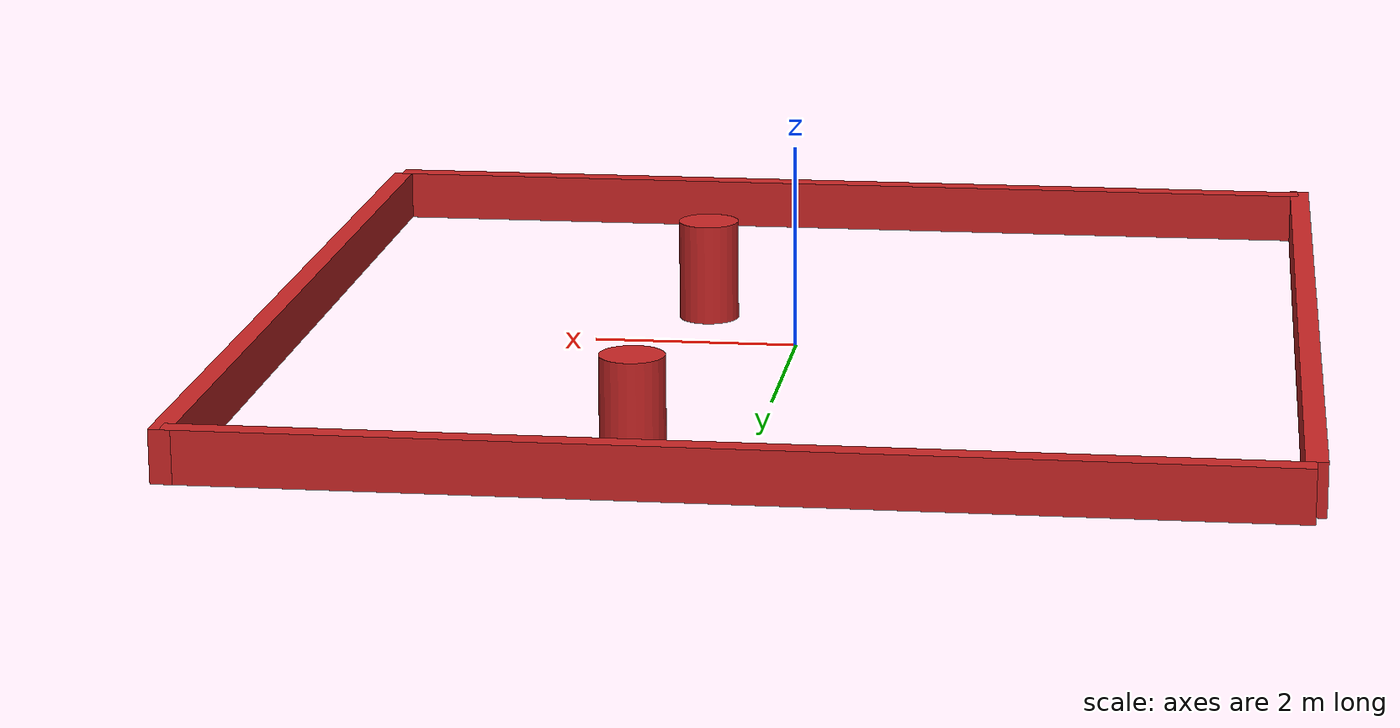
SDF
<?xml version='1.0'?>
<sdf version='1.4'>
  <model name='square_arena'>
    <link name='Wall_0'>
      <collision name='Wall_0_Collision'>
        <geometry>
          <box>
            <size>10.0 0.2 0.5</size>
          </box>
        </geometry>
        <pose>0 0 0.25 0 -0 0</pose>
      </collision>
      <visual name='Wall_0_Visual'>
        <pose>0 0 0.25 0 -0 0</pose>
        <geometry>
          <box>
            <size>10.0 0.2 0.5</size>
          </box>
        </geometry>
        <material>
          <script>
            <uri>file://media/materials/scripts/gazebo.material</uri>
            <name>Gazebo/Red</name>
          </script>
        </material>
      </visual>
      <velocity_decay>
        <linear>0</linear>
        <angular>0</angular>
      </velocity_decay>
      <pose>0 5 0 0 -0 3.14159</pose>
    </link>
    <link name='Wall_2'>
      <collision name='Wall_2_Collision'>
        <geometry>
          <box>
            <size>10 0.2 0.5</size>
          </box>
        </geometry>
        <pose>0 0 0.25 0 -0 0</pose>
      </collision>
      <visual name='Wall_2_Visual'>
        <pose>0 0 0.25 0 -0 0</pose>
        <geometry>
          <box>
            <size>10 0.2 0.5</size>
          </box>
        </geometry>
        <material>
          <script>
            <uri>file://media/materials/scripts/gazebo.material</uri>
            <name>Gazebo/Red</name>
          </script>
        </material>
      </visual>
      <velocity_decay>
        <linear>0</linear>
        <angular>0</angular>
      </velocity_decay>
      <pose>-5 -0.1 0 0 -0 1.5708</pose>
    </link>
    <link name='Wall_4'>
      <collision name='Wall_4_Collision'>
        <geometry>
          <box>
            <size>10 0.2 0.5</size>
          </box>
        </geometry>
        <pose>0 0 0.25 0 -0 0</pose>
      </collision>
      <visual name='Wall_4_Visual'>
        <pose>0 0 0.25 0 -0 0</pose>
        <geometry>
          <box>
            <size>10 0.2 0.5</size>
          </box>
        </geometry>
        <material>
          <script>
            <uri>file://media/materials/scripts/gazebo.material</uri>
            <name>Gazebo/Red</name>
          </script>
        </material>
      </visual>
      <velocity_decay>
        <linear>0</linear>
        <angular>0</angular>
      </velocity_decay>
      <pose>5 0.1 0 0 0 -1.5708</pose>
    </link>
    <link name='Wall_7'>
      <collision name='Wall_7_Collision'>
        <geometry>
          <box>
            <size>10.0 0.2 0.5</size>
          </box>
        </geometry>
        <pose>0 0 0.25 0 -0 0</pose>
      </collision>
      <visual name='Wall_7_Visual'>
        <pose>0 0 0.25 0 -0 0</pose>
        <geometry>
          <box>
            <size>10.0 0.2 0.5</size>
          </box>
        </geometry>
        <material>
          <script>
            <uri>file://media/materials/scripts/gazebo.material</uri>
            <name>Gazebo/Red</name>
          </script>
        </material>
      </visual>
      <velocity_decay>
        <linear>0</linear>
        <angular>0</angular>
      </velocity_decay>
      <pose>0.013664 -4.96178 0 0 -0 0</pose>
    </link>
    <static>1</static>
  </model>
    <!-- Two columns in the world -->
        <model name='unit_cylinder_1'>
      <pose>1 -1 0.5 0 -0 0</pose>
      <link name='link'>
        <inertial>
          <mass>1</mass>
          <inertia>
            <ixx>1</ixx>
            <ixy>0</ixy>
            <ixz>0</ixz>
            <iyy>1</iyy>
            <iyz>0</iyz>
            <izz>1</izz>
          </inertia>
        </inertial>
        <collision name='collision'>
          <geometry>
            <cylinder>
              <radius>0.3</radius>
              <length>1</length>
            </cylinder>
          </geometry>
          <max_contacts>10</max_contacts>
          <surface>
            <bounce/>
            <friction>
              <ode/>
            </friction>
            <contact>
              <ode/>
            </contact>
          </surface>
        </collision>
        <visual name='visual'>
          <geometry>
            <cylinder>
              <radius>0.3</radius>
              <length>1</length>
            </cylinder>
          </geometry>
          <material>
            <script>
              <uri>file://media/materials/scripts/gazebo.material</uri>
              <name>Gazebo/Red</name>
            </script>
          </material>
        </visual>
        <velocity_decay>
          <linear>0</linear>
          <angular>0</angular>
        </velocity_decay>
        <self_collide>0</self_collide>
        <kinematic>0</kinematic>
        <gravity>1</gravity>
      </link>
      <static>1</static>
    </model>
    <model name='unit_cylinder_2'>
      <pose>1 4 0.5 0 -0 0</pose>
      <link name='link'>
        <inertial>
          <mass>1</mass>
          <inertia>
            <ixx>1</ixx>
            <ixy>0</ixy>
            <ixz>0</ixz>
            <iyy>1</iyy>
            <iyz>0</iyz>
            <izz>1</izz>
          </inertia>
        </inertial>
        <collision name='collision'>
          <geometry>
            <cylinder>
              <radius>0.3</radius>
              <length>1</length>
            </cylinder>
          </geometry>
          <max_contacts>10</max_contacts>
          <surface>
            <bounce/>
            <friction>
              <ode/>
            </friction>
            <contact>
              <ode/>
            </contact>
          </surface>
        </collision>
        <visual name='visual'>
          <geometry>
            <cylinder>
              <radius>0.3</radius>
              <length>1</length>
            </cylinder>
          </geometry>
          <material>
            <script>
              <uri>file://media/materials/scripts/gazebo.material</uri>
              <name>Gazebo/Red</name>
            </script>
          </material>
        </visual>
        <velocity_decay>
          <linear>0</linear>
          <angular>0</angular>
        </velocity_decay>
        <self_collide>0</self_collide>
        <kinematic>0</kinematic>
        <gravity>1</gravity>
      </link>
      <static>1</static>
    </model>

</sdf>
